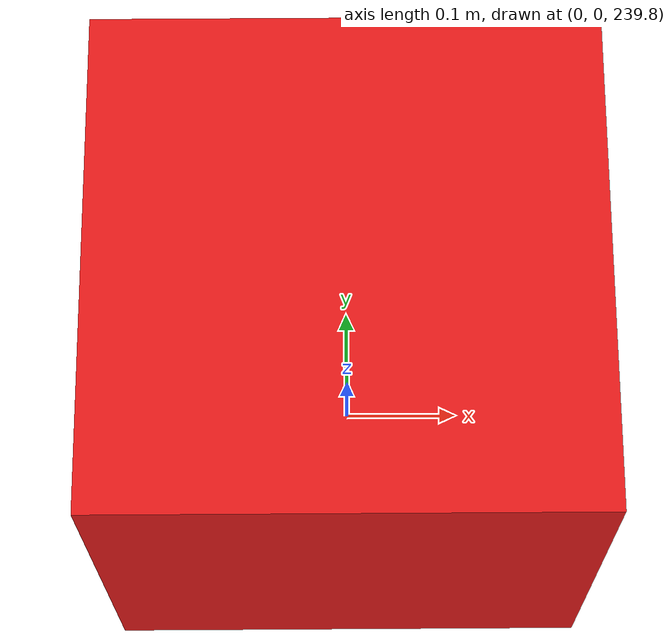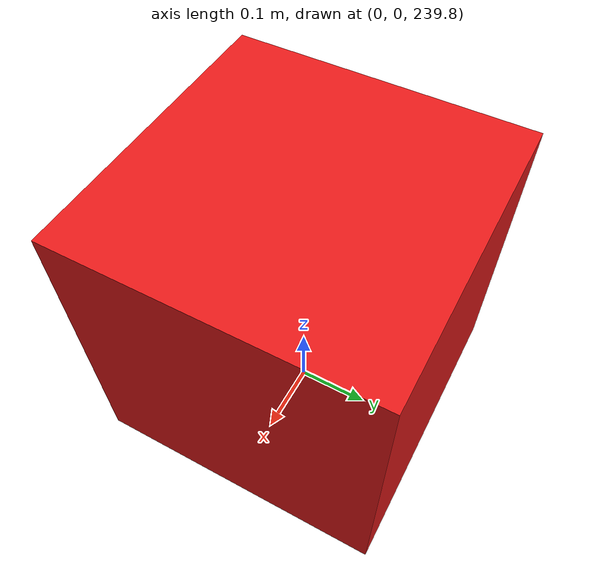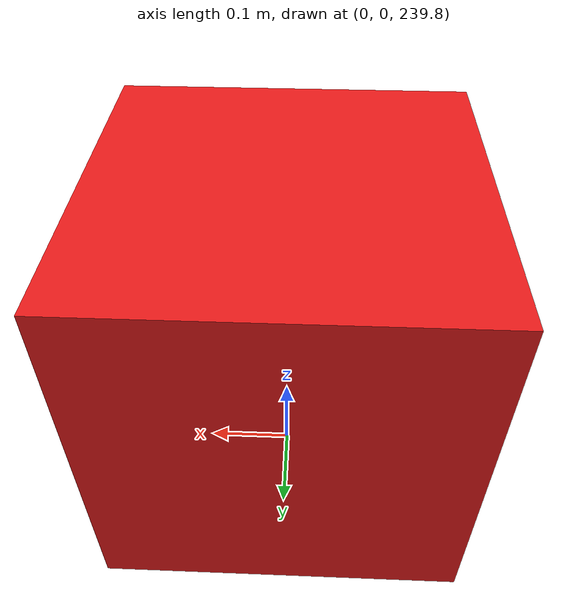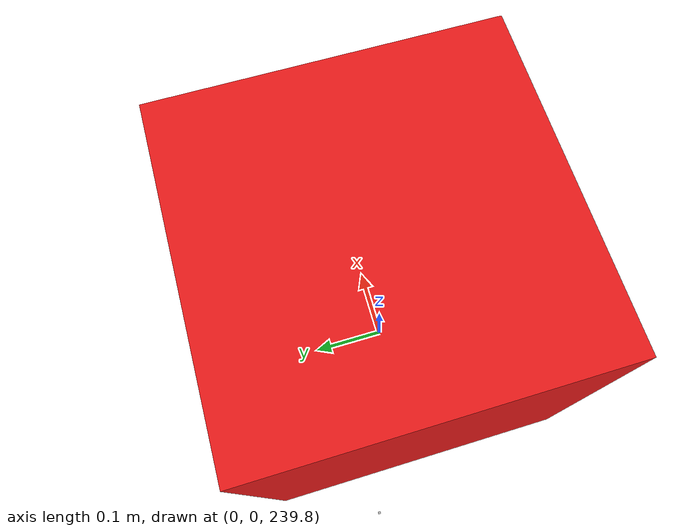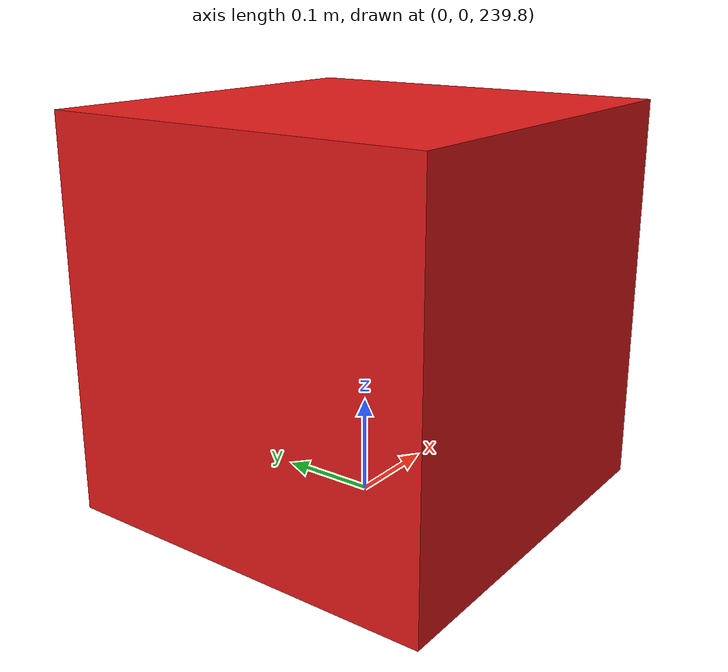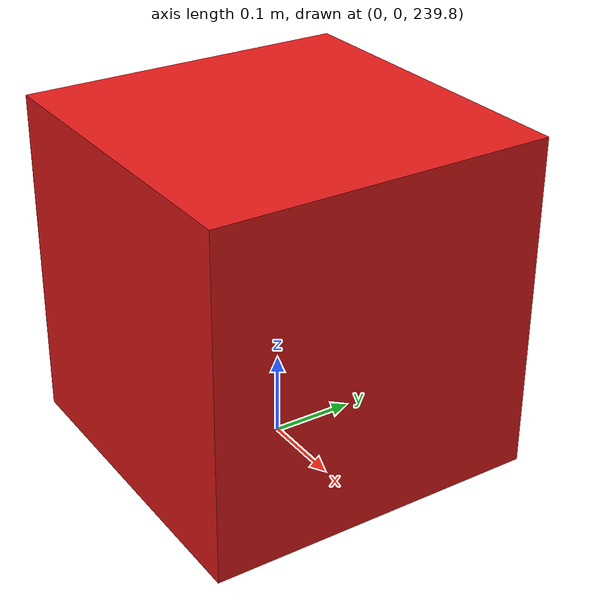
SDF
<?xml version="1.0" ?>
<sdf version="1.9">
  <world name="qau_localization_test">

    <!-- World origin == reference-database centre (lat 33.7470, lon 73.1370). -->
    <spherical_coordinates>
      <surface_model>EARTH_WGS84</surface_model>
      <latitude_deg>33.7470</latitude_deg>
      <longitude_deg>73.1370</longitude_deg>
      <elevation>550</elevation>
      <heading_deg>0</heading_deg>
    </spherical_coordinates>

    <physics type="ode">
      <max_step_size>0.004</max_step_size>
      <real_time_factor>1.0</real_time_factor>
      <real_time_update_rate>250</real_time_update_rate>
    </physics>

    <!-- Bright, even lighting so the texture's features detect cleanly. -->
    <scene>
      <ambient>0.8 0.8 0.8 1</ambient>
      <background>0.6 0.75 0.9 1</background>
      <shadows>false</shadows>
    </scene>

    <light type="directional" name="sun">
      <cast_shadows>false</cast_shadows>
      <pose>0 0 100 0 0 0</pose>
      <diffuse>0.9 0.9 0.85 1</diffuse>
      <specular>0.2 0.2 0.2 1</specular>
      <direction>0 0 -1</direction>
    </light>

    <!-- Ground plane: real satellite-textured, portable model://qau_ground_plane
         (identical to uav_test_world.sdf; simulation/models/qau_ground_plane/). -->
    <include>
      <uri>model://qau_ground_plane</uri>
      <pose>0 0 0 0 0 0</pose>
    </include>

    <!-- STATIC DOWNWARD-CAMERA OBSERVER over grid_center @ 240 m -->
    <model name="vns_observer">
      <static>true</static>
      <!-- Park the camera body at the world origin, 240 m up. -->
      <pose>0 0 240 0 0 0</pose>
      <link name="camera_link">
        <!-- Pitch +90 deg so the camera optical axis (+X) points straight down. -->
        <pose>0 0 0 0 0 0</pose>
        <visual name="camera_visual">
          <geometry><box><size>0.4 0.4 0.4</size></box></geometry>
          <material>
            <ambient>0.8 0.1 0.1 1</ambient>
            <diffuse>0.9 0.1 0.1 1</diffuse>
          </material>
        </visual>
        <sensor name="downward_camera" type="camera">
          <!-- FR-11: camera optical axis points straight down for nadir captures. -->
          <pose>0 0 0 0 1.5708 0</pose>
          <always_on>true</always_on>
          <update_rate>10</update_rate>
          <visualize>true</visualize>
          <camera name="vns_cam">
            <horizontal_fov>1.047</horizontal_fov>
            <image>
              <width>640</width>
              <height>480</height>
              <format>R8G8B8</format>
            </image>
            <clip>
              <near>0.1</near>
              <far>500</far>
            </clip>
          </camera>
          <plugin name="camera_controller" filename="libgazebo_ros_camera.so">
            <ros>
              <namespace>/vns_drone</namespace>
            </ros>
            <camera_name>downward_camera</camera_name>
            <frame_name>camera_link</frame_name>
          </plugin>
        </sensor>
      </link>
    </model>

  </world>
</sdf>

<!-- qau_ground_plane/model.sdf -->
<sdf version="1.7">
  <model name="qau_ground_plane">
    <static>true</static>
    <link name="link">
      <collision name="collision">
        <geometry>
          <plane>
            <normal>0 0 1</normal>
            <size>1000 1000</size>
          </plane>
        </geometry>
      </collision>

      <visual name="base">
        <geometry>
          <plane>
            <normal>0 0 1</normal>
            <size>1000 1000</size>
          </plane>
        </geometry>
        <material>
          <ambient>0.388 0.400 0.398 1</ambient>
          <diffuse>0.388 0.400 0.398 1</diffuse>
        </material>
      </visual>

      <visual name="satellite_map">
        <pose>0 0 0.02 0 0 0</pose>
        <geometry>
          <box>
            <size>600 450.6 0.04</size>
          </box>
        </geometry>
        <material>
          <script>
            <uri>model://qau_ground_plane/materials/scripts</uri>
            <uri>model://qau_ground_plane/materials/textures</uri>
            <name>QAU/Satellite</name>
          </script>
        </material>
      </visual>
    </link>
  </model>
</sdf>
